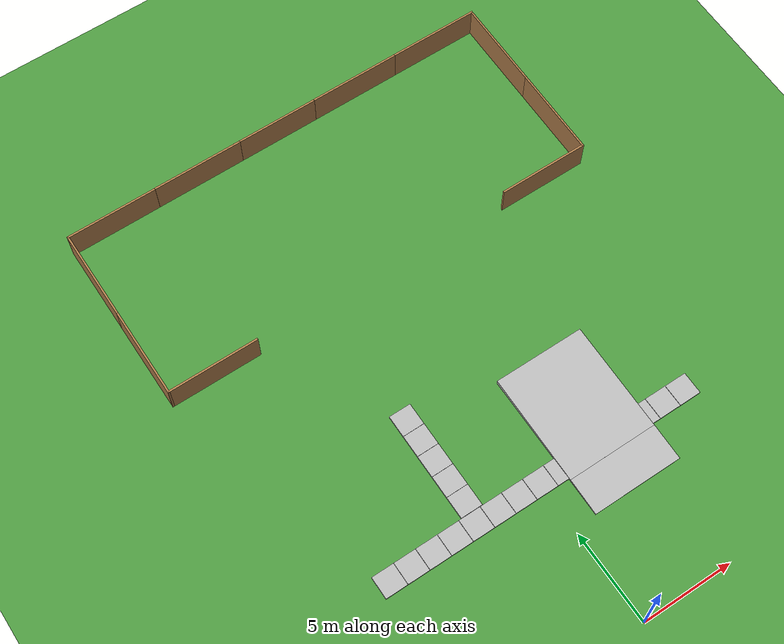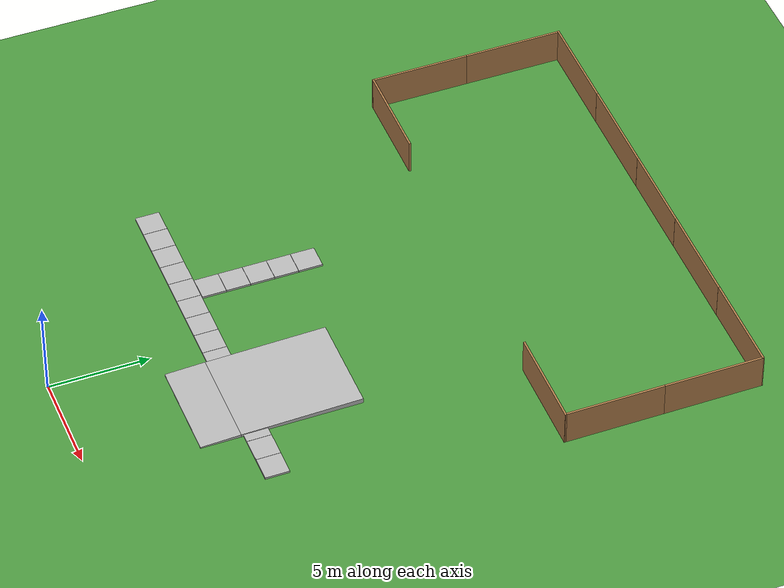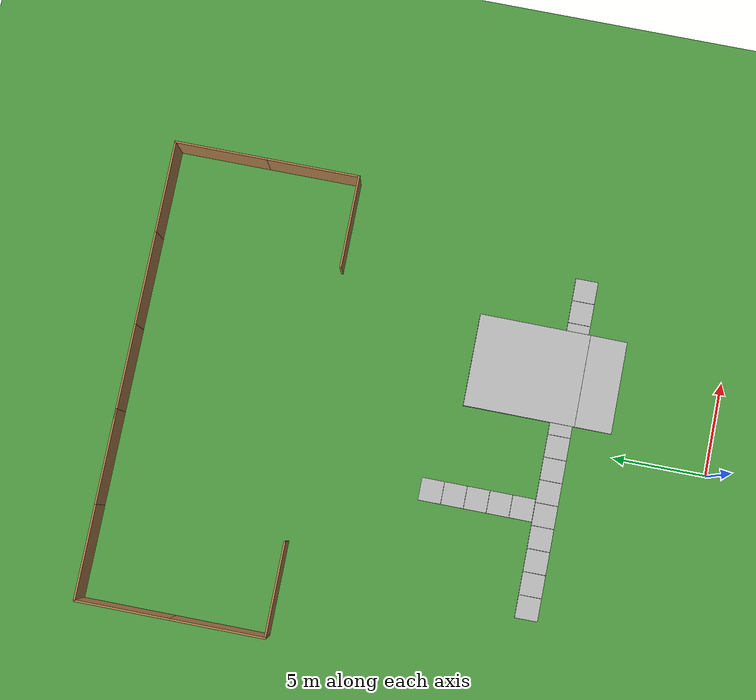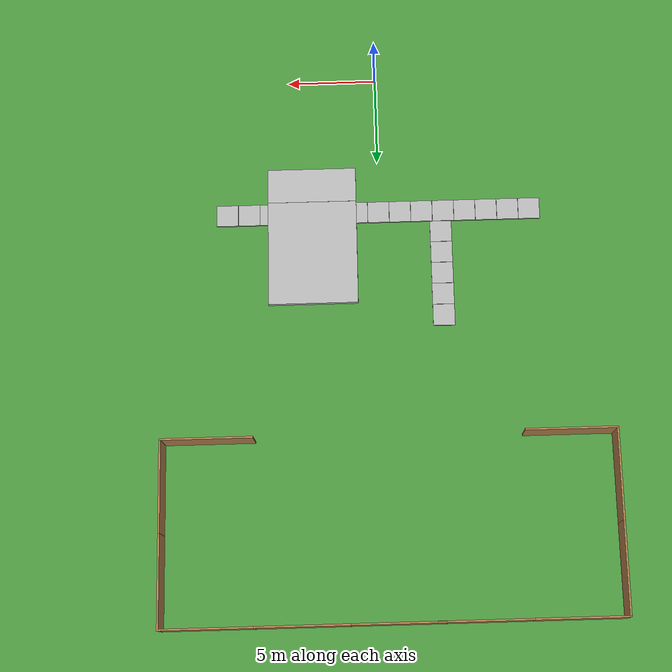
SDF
<sdf version="1.7">
 <world name="default">
  <light name="sun" type="directional">
   <pose>0 0 10 0 -0 0</pose>
   <diffuse>0.8 0.8 0.8 1</diffuse>
   <specular>0.2 0.2 0.2 1</specular>
   <attenuation>
    <range>1000</range>
    <constant>0.9</constant>
    <linear>0.01</linear>
    <quadratic>0.001</quadratic>
   </attenuation>
   <direction>-0.5 0.1 -0.9</direction>
   <spot><inner_angle>0</inner_angle><outer_angle>0</outer_angle><falloff>0</falloff></spot>
  </light>
  <gravity>0 0 -9.8</gravity>
  <magnetic_field>6e-06 2.3e-05 -4.2e-05</magnetic_field>
  <atmosphere type="adiabatic"/>
  <physics name="default_physics" default="0" type="ode">
   <max_step_size>0.001</max_step_size>
   <real_time_factor>1</real_time_factor>
   <real_time_update_rate>1000</real_time_update_rate>
  </physics>
  <scene>
   <grid>0</grid>
   <origin_visual>0</origin_visual>
   <ambient>0.592 0.624 0.635 1</ambient>
   <sky><clouds><speed>12</speed></clouds></sky>
   <background>0.35 0.35 0.35 1</background>
   <shadows>1</shadows>
  </scene>
  <audio><device>default</device></audio>
  <spherical_coordinates>
   <surface_model>EARTH_WGS84</surface_model>
   <latitude_deg>0</latitude_deg>
   <longitude_deg>0</longitude_deg>
   <elevation>0</elevation>
   <heading_deg>0</heading_deg>
  </spherical_coordinates>
  <model name="ground_plane">
   <static>1</static>
   <link name="link">
    <collision name="collision">
     <geometry><plane><normal>0 0 1</normal><size>100 100</size></plane></geometry>
     <surface><friction><ode><mu>100</mu><mu2>50</mu2></ode></friction></surface>
    </collision>
    <visual name="visual">
     <cast_shadows>0</cast_shadows>
     <geometry><plane><normal>0 0 1</normal><size>100 100</size></plane></geometry>
     <material>
      <script><uri>file://media/materials/scripts/gazebo.material</uri><name>Gazebo/Grass</name></script>
     </material>
    </visual>
   </link>
  </model>
  <model name="sidewalk_1">
   <static>1</static>
   <link name="link">
    <collision name="collision"><geometry><box><size>1.21 1.21 0.15</size></box></geometry></collision>
    <visual name="visual">
     <cast_shadows>0</cast_shadows>
     <geometry><box><size>1.21 1.21 0.15</size></box></geometry>
     <material>
      <script>
       <uri>model://sidewalk/materials/scripts</uri>
       <uri>model://sidewalk/materials/textures</uri>
       <name>Sidewalk/Concrete</name>
      </script>
     </material>
    </visual>
   </link>
   <pose>0 8 0 0 -0 0</pose>
  </model>
  <model name="sidewalk_2">
   <static>1</static>
   <link name="link">
    <collision name="collision"><geometry><box><size>1.21 1.21 0.15</size></box></geometry></collision>
    <visual name="visual">
     <cast_shadows>0</cast_shadows>
     <geometry><box><size>1.21 1.21 0.15</size></box></geometry>
     <material>
      <script>
       <uri>model://sidewalk/materials/scripts</uri>
       <uri>model://sidewalk/materials/textures</uri>
       <name>Sidewalk/Concrete</name>
      </script>
     </material>
    </visual>
   </link>
   <pose>1.22 8 0 0 -0 0</pose>
  </model>
  <model name="sidewalk_3">
   <static>1</static>
   <link name="link">
    <collision name="collision"><geometry><box><size>1.21 1.21 0.15</size></box></geometry></collision>
    <visual name="visual">
     <cast_shadows>0</cast_shadows>
     <geometry><box><size>1.21 1.21 0.15</size></box></geometry>
     <material>
      <script>
       <uri>model://sidewalk/materials/scripts</uri>
       <uri>model://sidewalk/materials/textures</uri>
       <name>Sidewalk/Concrete</name>
      </script>
     </material>
    </visual>
   </link>
   <pose>2.44 8 0 0 -0 0</pose>
  </model>
  <model name="sidewalk_4">
   <static>1</static>
   <link name="link">
    <collision name="collision"><geometry><box><size>1.21 1.21 0.15</size></box></geometry></collision>
    <visual name="visual">
     <cast_shadows>0</cast_shadows>
     <geometry><box><size>1.21 1.21 0.15</size></box></geometry>
     <material>
      <script>
       <uri>model://sidewalk/materials/scripts</uri>
       <uri>model://sidewalk/materials/textures</uri>
       <name>Sidewalk/Concrete</name>
      </script>
     </material>
    </visual>
   </link>
   <pose>3.66 8 0 0 -0 0</pose>
  </model>
  <model name="sidewalk_5">
   <static>1</static>
   <link name="link">
    <collision name="collision"><geometry><box><size>1.21 1.21 0.15</size></box></geometry></collision>
    <visual name="visual">
     <cast_shadows>0</cast_shadows>
     <geometry><box><size>1.21 1.21 0.15</size></box></geometry>
     <material>
      <script>
       <uri>model://sidewalk/materials/scripts</uri>
       <uri>model://sidewalk/materials/textures</uri>
       <name>Sidewalk/Concrete</name>
      </script>
     </material>
    </visual>
   </link>
   <pose>4.88 8 0 0 -0 0</pose>
  </model>
  <model name="sidewalk_6">
   <static>1</static>
   <link name="link">
    <collision name="collision"><geometry><box><size>1.21 1.21 0.15</size></box></geometry></collision>
    <visual name="visual">
     <cast_shadows>0</cast_shadows>
     <geometry><box><size>1.21 1.21 0.15</size></box></geometry>
     <material>
      <script>
       <uri>model://sidewalk/materials/scripts</uri>
       <uri>model://sidewalk/materials/textures</uri>
       <name>Sidewalk/Concrete</name>
      </script>
     </material>
    </visual>
   </link>
   <pose>6.1 8 0 0 -0 0</pose>
  </model>
  <model name="sidewalk_7">
   <static>1</static>
   <link name="link">
    <collision name="collision"><geometry><box><size>1.21 1.21 0.15</size></box></geometry></collision>
    <visual name="visual">
     <cast_shadows>0</cast_shadows>
     <geometry><box><size>1.21 1.21 0.15</size></box></geometry>
     <material>
      <script>
       <uri>model://sidewalk/materials/scripts</uri>
       <uri>model://sidewalk/materials/textures</uri>
       <name>Sidewalk/Concrete</name>
      </script>
     </material>
    </visual>
   </link>
   <pose>7.32 8 0 0 -0 0</pose>
  </model>
  <model name="sidewalk_8">
   <static>1</static>
   <link name="link">
    <collision name="collision"><geometry><box><size>1.21 1.21 0.15</size></box></geometry></collision>
    <visual name="visual">
     <cast_shadows>0</cast_shadows>
     <geometry><box><size>1.21 1.21 0.15</size></box></geometry>
     <material>
      <script>
       <uri>model://sidewalk/materials/scripts</uri>
       <uri>model://sidewalk/materials/textures</uri>
       <name>Sidewalk/Concrete</name>
      </script>
     </material>
    </visual>
   </link>
   <pose>8.54 8 0 0 -0 0</pose>
  </model>
  <model name="sidewalk_2_1">
   <static>1</static>
   <link name="link">
    <collision name="collision"><geometry><box><size>1.21 1.21 0.15</size></box></geometry></collision>
    <visual name="visual">
     <cast_shadows>0</cast_shadows>
     <geometry><box><size>1.21 1.21 0.15</size></box></geometry>
     <material>
      <script>
       <uri>model://sidewalk/materials/scripts</uri>
       <uri>model://sidewalk/materials/textures</uri>
       <name>Sidewalk/Concrete</name>
      </script>
     </material>
    </visual>
   </link>
   <pose>-1.22 8 0 0 -0 0</pose>
  </model>
  <model name="sidewalk_3_1">
   <static>1</static>
   <link name="link">
    <collision name="collision"><geometry><box><size>1.21 1.21 0.15</size></box></geometry></collision>
    <visual name="visual">
     <cast_shadows>0</cast_shadows>
     <geometry><box><size>1.21 1.21 0.15</size></box></geometry>
     <material>
      <script>
       <uri>model://sidewalk/materials/scripts</uri>
       <uri>model://sidewalk/materials/textures</uri>
       <name>Sidewalk/Concrete</name>
      </script>
     </material>
    </visual>
   </link>
   <pose>-2.44 8 0 0 -0 0</pose>
  </model>
  <model name="sidewalk_4_1">
   <static>1</static>
   <link name="link">
    <collision name="collision"><geometry><box><size>1.21 1.21 0.15</size></box></geometry></collision>
    <visual name="visual">
     <cast_shadows>0</cast_shadows>
     <geometry><box><size>1.21 1.21 0.15</size></box></geometry>
     <material>
      <script>
       <uri>model://sidewalk/materials/scripts</uri>
       <uri>model://sidewalk/materials/textures</uri>
       <name>Sidewalk/Concrete</name>
      </script>
     </material>
    </visual>
   </link>
   <pose>-3.66 8 0 0 -0 0</pose>
  </model>
  <model name="sidewalk_5_1">
   <static>1</static>
   <link name="link">
    <collision name="collision"><geometry><box><size>1.21 1.21 0.15</size></box></geometry></collision>
    <visual name="visual">
     <cast_shadows>0</cast_shadows>
     <geometry><box><size>1.21 1.21 0.15</size></box></geometry>
     <material>
      <script>
       <uri>model://sidewalk/materials/scripts</uri>
       <uri>model://sidewalk/materials/textures</uri>
       <name>Sidewalk/Concrete</name>
      </script>
     </material>
    </visual>
   </link>
   <pose>-4.88 8 0 0 -0 0</pose>
  </model>
  <model name="sidewalk_6_1">
   <static>1</static>
   <link name="link">
    <collision name="collision"><geometry><box><size>1.21 1.21 0.15</size></box></geometry></collision>
    <visual name="visual">
     <cast_shadows>0</cast_shadows>
     <geometry><box><size>1.21 1.21 0.15</size></box></geometry>
     <material>
      <script>
       <uri>model://sidewalk/materials/scripts</uri>
       <uri>model://sidewalk/materials/textures</uri>
       <name>Sidewalk/Concrete</name>
      </script>
     </material>
    </visual>
   </link>
   <pose>-6.1 8 0 0 -0 0</pose>
  </model>
  <model name="sidewalk_7_1">
   <static>1</static>
   <link name="link">
    <collision name="collision"><geometry><box><size>1.21 1.21 0.15</size></box></geometry></collision>
    <visual name="visual">
     <cast_shadows>0</cast_shadows>
     <geometry><box><size>1.21 1.21 0.15</size></box></geometry>
     <material>
      <script>
       <uri>model://sidewalk/materials/scripts</uri>
       <uri>model://sidewalk/materials/textures</uri>
       <name>Sidewalk/Concrete</name>
      </script>
     </material>
    </visual>
   </link>
   <pose>-7.32 8 0 0 -0 0</pose>
  </model>
  <model name="sidewalk_8_1">
   <static>1</static>
   <link name="link">
    <collision name="collision"><geometry><box><size>1.21 1.21 0.15</size></box></geometry></collision>
    <visual name="visual">
     <cast_shadows>0</cast_shadows>
     <geometry><box><size>1.21 1.21 0.15</size></box></geometry>
     <material>
      <script>
       <uri>model://sidewalk/materials/scripts</uri>
       <uri>model://sidewalk/materials/textures</uri>
       <name>Sidewalk/Concrete</name>
      </script>
     </material>
    </visual>
   </link>
   <pose>-8.54 8 0 0 -0 0</pose>
  </model>
  <model name="fence_1">
   <static>1</static>
   <link name="link">
    <pose>0 0 0.915 0 -0 0</pose>
    <collision name="collision"><geometry><box><size>0.1 5 1.83</size></box></geometry></collision>
    <visual name="visual">
     <cast_shadows>0</cast_shadows>
     <geometry><box><size>0.1 5 1.83</size></box></geometry>
     <material>
      <script>
       <uri>model://fence/materials/scripts</uri>
       <uri>model://fence/materials/textures</uri>
       <name>Fence/WoodBoarding</name>
      </script>
     </material>
    </visual>
   </link>
   <pose>9.5 21 0 0 -0 1.57</pose>
  </model>
  <model name="fence_1_1">
   <static>1</static>
   <link name="link">
    <pose>0 0 0.915 0 -0 0</pose>
    <collision name="collision"><geometry><box><size>0.1 5 1.83</size></box></geometry></collision>
    <visual name="visual">
     <cast_shadows>0</cast_shadows>
     <geometry><box><size>0.1 5 1.83</size></box></geometry>
     <material>
      <script>
       <uri>model://fence/materials/scripts</uri>
       <uri>model://fence/materials/textures</uri>
       <name>Fence/WoodBoarding</name>
      </script>
     </material>
    </visual>
   </link>
   <pose>11.95 23.45 0 0 -0 0</pose>
  </model>
  <model name="fence_1_2">
   <static>1</static>
   <link name="link">
    <pose>0 0 0.915 0 -0 0</pose>
    <collision name="collision"><geometry><box><size>0.1 5 1.83</size></box></geometry></collision>
    <visual name="visual">
     <cast_shadows>0</cast_shadows>
     <geometry><box><size>0.1 5 1.83</size></box></geometry>
     <material>
      <script>
       <uri>model://fence/materials/scripts</uri>
       <uri>model://fence/materials/textures</uri>
       <name>Fence/WoodBoarding</name>
      </script>
     </material>
    </visual>
   </link>
   <pose>11.95 28.45 0 0 -0 0</pose>
  </model>
  <model name="fence_2">
   <static>1</static>
   <link name="link">
    <pose>0 0 0.915 0 -0 0</pose>
    <collision name="collision"><geometry><box><size>0.1 5 1.83</size></box></geometry></collision>
    <visual name="visual">
     <cast_shadows>0</cast_shadows>
     <geometry><box><size>0.1 5 1.83</size></box></geometry>
     <material>
      <script>
       <uri>model://fence/materials/scripts</uri>
       <uri>model://fence/materials/textures</uri>
       <name>Fence/WoodBoarding</name>
      </script>
     </material>
    </visual>
   </link>
   <pose>-10 21 0 0 -0 1.57</pose>
  </model>
  <model name="fence_2_1">
   <static>1</static>
   <link name="link">
    <pose>0 0 0.915 0 -0 0</pose>
    <collision name="collision"><geometry><box><size>0.1 5 1.83</size></box></geometry></collision>
    <visual name="visual">
     <cast_shadows>0</cast_shadows>
     <geometry><box><size>0.1 5 1.83</size></box></geometry>
     <material>
      <script>
       <uri>model://fence/materials/scripts</uri>
       <uri>model://fence/materials/textures</uri>
       <name>Fence/WoodBoarding</name>
      </script>
     </material>
    </visual>
   </link>
   <pose>-12.45 23.45 0 0 -0 0</pose>
  </model>
  <model name="fence_2_2">
   <static>1</static>
   <link name="link">
    <pose>0 0 0.915 0 -0 0</pose>
    <collision name="collision"><geometry><box><size>0.1 5 1.83</size></box></geometry></collision>
    <visual name="visual">
     <cast_shadows>0</cast_shadows>
     <geometry><box><size>0.1 5 1.83</size></box></geometry>
     <material>
      <script>
       <uri>model://fence/materials/scripts</uri>
       <uri>model://fence/materials/textures</uri>
       <name>Fence/WoodBoarding</name>
      </script>
     </material>
    </visual>
   </link>
   <pose>-12.45 28.45 0 0 -0 0</pose>
  </model>
  <model name="fence_3_1">
   <static>1</static>
   <link name="link">
    <pose>0 0 0.915 0 -0 0</pose>
    <collision name="collision"><geometry><box><size>0.1 5 1.83</size></box></geometry></collision>
    <visual name="visual">
     <cast_shadows>0</cast_shadows>
     <geometry><box><size>0.1 5 1.83</size></box></geometry>
     <material>
      <script>
       <uri>model://fence/materials/scripts</uri>
       <uri>model://fence/materials/textures</uri>
       <name>Fence/WoodBoarding</name>
      </script>
     </material>
    </visual>
   </link>
   <pose>9.5 30.9 0 0 -0 1.57</pose>
  </model>
  <model name="fence_3_2">
   <static>1</static>
   <link name="link">
    <pose>0 0 0.915 0 -0 0</pose>
    <collision name="collision"><geometry><box><size>0.1 5 1.83</size></box></geometry></collision>
    <visual name="visual">
     <cast_shadows>0</cast_shadows>
     <geometry><box><size>0.1 5 1.83</size></box></geometry>
     <material>
      <script>
       <uri>model://fence/materials/scripts</uri>
       <uri>model://fence/materials/textures</uri>
       <name>Fence/WoodBoarding</name>
      </script>
     </material>
    </visual>
   </link>
   <pose>4.5 30.9 0 0 -0 1.57</pose>
  </model>
  <model name="fence_3_3">
   <static>1</static>
   <link name="link">
    <pose>0 0 0.915 0 -0 0</pose>
    <collision name="collision"><geometry><box><size>0.1 5 1.83</size></box></geometry></collision>
    <visual name="visual">
     <cast_shadows>0</cast_shadows>
     <geometry><box><size>0.1 5 1.83</size></box></geometry>
     <material>
      <script>
       <uri>model://fence/materials/scripts</uri>
       <uri>model://fence/materials/textures</uri>
       <name>Fence/WoodBoarding</name>
      </script>
     </material>
    </visual>
   </link>
   <pose>-0.5 30.9 0 0 -0 1.57</pose>
  </model>
  <model name="fence_3_4">
   <static>1</static>
   <link name="link">
    <pose>0 0 0.915 0 -0 0</pose>
    <collision name="collision"><geometry><box><size>0.1 5 1.83</size></box></geometry></collision>
    <visual name="visual">
     <cast_shadows>0</cast_shadows>
     <geometry><box><size>0.1 5 1.83</size></box></geometry>
     <material>
      <script>
       <uri>model://fence/materials/scripts</uri>
       <uri>model://fence/materials/textures</uri>
       <name>Fence/WoodBoarding</name>
      </script>
     </material>
    </visual>
   </link>
   <pose>-5 30.9 0 0 -0 1.57</pose>
  </model>
  <model name="fence_3_5">
   <static>1</static>
   <link name="link">
    <pose>0 0 0.915 0 -0 0</pose>
    <collision name="collision"><geometry><box><size>0.1 5 1.83</size></box></geometry></collision>
    <visual name="visual">
     <cast_shadows>0</cast_shadows>
     <geometry><box><size>0.1 5 1.83</size></box></geometry>
     <material>
      <script>
       <uri>model://fence/materials/scripts</uri>
       <uri>model://fence/materials/textures</uri>
       <name>Fence/WoodBoarding</name>
      </script>
     </material>
    </visual>
   </link>
   <pose>-10 30.9 0 0 -0 1.57</pose>
  </model>
  <model name="driveway">
   <static>1</static>
   <link name="link">
    <collision name="collision_1">
     <pose>0 0 0.02 0.02 -0 0</pose>
     <geometry><box><size>5 6 0.3</size></box></geometry>
     <surface><friction><ode><mu>100</mu><mu2>50</mu2></ode></friction></surface>
    </collision>
    <collision name="collision_2">
     <pose>0 -4 0 0.04 -0 0</pose>
     <geometry><box><size>5 2 0.15</size></box></geometry>
     <surface><friction><ode><mu>100</mu><mu2>50</mu2></ode></friction></surface>
    </collision>
    <visual name="visual_1">
     <pose>0 0 0.02 0.02 -0 0</pose>
     <cast_shadows>0</cast_shadows>
     <geometry><box><size>5 6 0.3</size></box></geometry>
     <material>
      <script>
       <uri>model://driveway/materials/scripts</uri>
       <uri>model://driveway/materials/textures</uri>
       <name>Driveway/Concrete</name>
      </script>
     </material>
    </visual>
    <visual name="visual_2">
     <pose>0 -4 0 0.04 -0 0</pose>
     <cast_shadows>0</cast_shadows>
     <geometry><box><size>5 2 0.15</size></box></geometry>
     <material>
      <script>
       <uri>model://driveway/materials/scripts</uri>
       <uri>model://driveway/materials/textures</uri>
       <name>Driveway/Concrete</name>
      </script>
     </material>
    </visual>
   </link>
   <pose>3.75 10.3 0 0 -0 0</pose>
  </model>
  <model name="walkway_1">
   <static>1</static>
   <link name="link">
    <collision name="collision"><geometry><box><size>1.21 1.21 0.15</size></box></geometry></collision>
    <visual name="visual">
     <cast_shadows>0</cast_shadows>
     <geometry><box><size>1.21 1.21 0.15</size></box></geometry>
     <material>
      <script>
       <uri>model://sidewalk/materials/scripts</uri>
       <uri>model://sidewalk/materials/textures</uri>
       <name>Sidewalk/Concrete</name>
      </script>
     </material>
    </visual>
   </link>
   <pose>-3.5 9.23 0 0 -0 0</pose>
  </model>
  <model name="walkway_2">
   <static>1</static>
   <link name="link">
    <collision name="collision"><geometry><box><size>1.21 1.21 0.15</size></box></geometry></collision>
    <visual name="visual">
     <cast_shadows>0</cast_shadows>
     <geometry><box><size>1.21 1.21 0.15</size></box></geometry>
     <material>
      <script>
       <uri>model://sidewalk/materials/scripts</uri>
       <uri>model://sidewalk/materials/textures</uri>
       <name>Sidewalk/Concrete</name>
      </script>
     </material>
    </visual>
   </link>
   <pose>-3.5 10.45 0 0 -0 0</pose>
  </model>
  <model name="walkway_3">
   <static>1</static>
   <link name="link">
    <collision name="collision"><geometry><box><size>1.21 1.21 0.15</size></box></geometry></collision>
    <visual name="visual">
     <cast_shadows>0</cast_shadows>
     <geometry><box><size>1.21 1.21 0.15</size></box></geometry>
     <material>
      <script>
       <uri>model://sidewalk/materials/scripts</uri>
       <uri>model://sidewalk/materials/textures</uri>
       <name>Sidewalk/Concrete</name>
      </script>
     </material>
    </visual>
   </link>
   <pose>-3.5 11.67 0 0 -0 0</pose>
  </model>
  <model name="walkway_4">
   <static>1</static>
   <link name="link">
    <collision name="collision"><geometry><box><size>1.21 1.21 0.15</size></box></geometry></collision>
    <visual name="visual">
     <cast_shadows>0</cast_shadows>
     <geometry><box><size>1.21 1.21 0.15</size></box></geometry>
     <material>
      <script>
       <uri>model://sidewalk/materials/scripts</uri>
       <uri>model://sidewalk/materials/textures</uri>
       <name>Sidewalk/Concrete</name>
      </script>
     </material>
    </visual>
   </link>
   <pose>-3.5 12.89 0 0 -0 0</pose>
  </model>
  <model name="walkway_5">
   <static>1</static>
   <link name="link">
    <collision name="collision"><geometry><box><size>1.21 1.21 0.15</size></box></geometry></collision>
    <visual name="visual">
     <cast_shadows>0</cast_shadows>
     <geometry><box><size>1.21 1.21 0.15</size></box></geometry>
     <material>
      <script>
       <uri>model://sidewalk/materials/scripts</uri>
       <uri>model://sidewalk/materials/textures</uri>
       <name>Sidewalk/Concrete</name>
      </script>
     </material>
    </visual>
   </link>
   <pose>-3.5 14.11 0 0 -0 0</pose>
  </model>
 </world>
</sdf>
